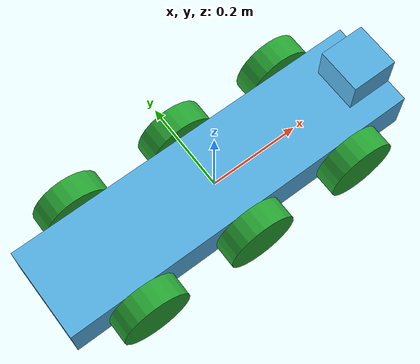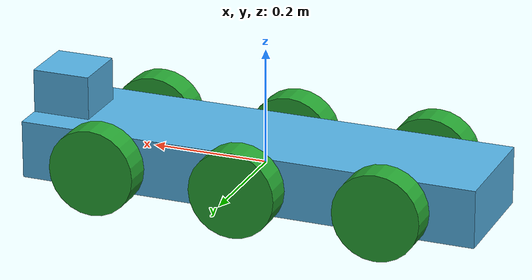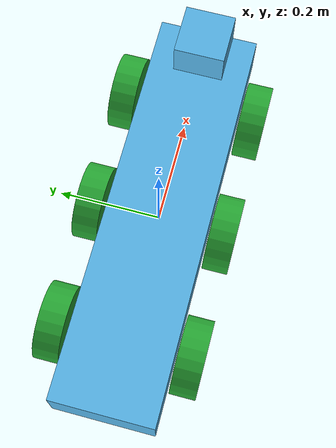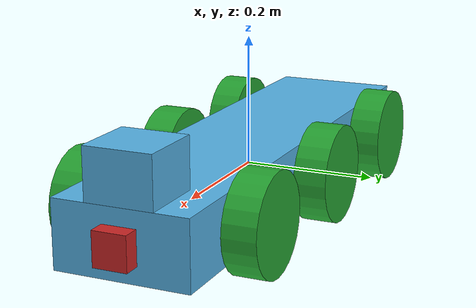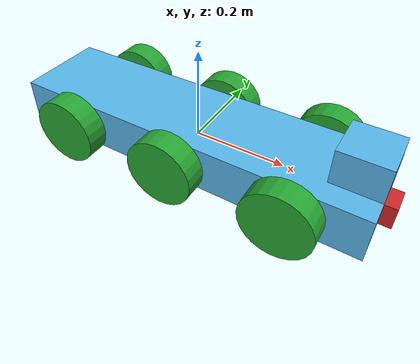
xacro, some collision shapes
<?xml version="1.0" ?>

<robot name="six_wheeler" xmlns:xacro="http://www.ros.org/wiki/xacro">

    <xacro:include filename="$(find my_robot)/urdf/six_wheeler.gazebo" />

    <link name="robot_footprint"></link>

    <joint name="robot_footprint_joint" type="fixed">
        <origin xyz="0 0 0" rpy="0 0 0" />
        <parent link="robot_footprint" />
        <child link="chassis" />
    </joint>

    <link name="chassis">
        <pose>0 0 0.1 0 0 0</pose>

        <inertial>
            <mass value="25.0" />
            <origin xyz="0.0 0 0" rpy=" 0 0 0" />
            <inertia ixx="0.1" ixy="0" ixz="0" iyy="0.1" iyz="0" izz="0.1" />
        </inertial>

        <collision name="chassis_collision">
            <origin xyz="0 0 0" rpy=" 0 0 0" />
            <geometry>
                <box size=".8 .2 .1" />
            </geometry>
        </collision>

        <visual name="chassis_visual">
            <origin xyz="0 0 0" rpy=" 0 0 0" />
            <geometry>
                <box size=".8 .2 .1" />
            </geometry>
        </visual>
    </link>

    <!-- #region left_wheel_1 -->
    <link name="left_wheel_1">
        <inertial>
            <mass value="5.0" />
            <origin xyz="0.0 0.0 0.0" rpy="0.0 1.5707 1.5707" />
            <inertia ixx="0.1" ixy="0" ixz="0" iyy="0.1" iyz="0" izz="0.1" />
        </inertial>

        <collision>
            <origin xyz="0.0 0.0 0.0" rpy="0.0 1.5707 1.5707" />
            <geometry>
                <cylinder radius="0.075" length="0.05" />
            </geometry>
        </collision>

        <visual>
            <origin xyz="0.0 0.0 0.0" rpy="0.0 1.5707 1.5707" />
            <geometry>
                <cylinder radius="0.075" length="0.05" />
            </geometry>
        </visual>
    </link>

    <joint type="continuous" name="left_wheel_1_hinge">
        <origin xyz="0.25 0.13 0" rpy="0 0 0" />
        <child link="left_wheel_1" />
        <parent link="chassis" />
        <axis xyz="0 1 0" rpy="0 0 0" />
        <limit effort="10000" velocity="1000" />
        <dynamics damping="1.0" friction="1.0" />
    </joint>

    <gazebo reference="left_wheel_1">
        <material>Gazebo/Green</material>
    </gazebo>
    <!-- #endregion left_wheel_1 -->

    <!-- #region left_wheel_2 -->
    <link name="left_wheel_2">
        <inertial>
            <mass value="5.0" />
            <origin xyz="0.0 0.0 0.0" rpy="0.0 1.5707 1.5707" />
            <inertia ixx="0.1" ixy="0" ixz="0" iyy="0.1" iyz="0" izz="0.1" />
        </inertial>

        <collision>
            <origin xyz="0.0 0.0 0.0" rpy="0.0 1.5707 1.5707" />
            <geometry>
                <cylinder radius="0.075" length="0.05" />
            </geometry>
        </collision>

        <visual>
            <origin xyz="0.0 0.0 0.0" rpy="0.0 1.5707 1.5707" />
            <geometry>
                <cylinder radius="0.075" length="0.05" />
            </geometry>
        </visual>
    </link>

    <joint type="continuous" name="left_wheel_2_hinge">
        <origin xyz="0 0.13 0" rpy="0 0 0" />
        <child link="left_wheel_2" />
        <parent link="chassis" />
        <axis xyz="0 1 0" rpy="0 0 0" />
        <limit effort="10000" velocity="1000" />
        <dynamics damping="1.0" friction="1.0" />
    </joint>

    <gazebo reference="left_wheel_2">
        <material>Gazebo/Green</material>
    </gazebo>
    <!-- #endregion left_wheel_2 -->

    <!-- #region left_wheel_3 -->
    <link name="left_wheel_3">
        <inertial>
            <mass value="5.0" />
            <origin xyz="0.0 0.0 0.0" rpy="0.0 1.5707 1.5707" />
            <inertia ixx="0.1" ixy="0" ixz="0" iyy="0.1" iyz="0" izz="0.1" />
        </inertial>

        <collision>
            <origin xyz="0.0 0.0 0.0" rpy="0.0 1.5707 1.5707" />
            <geometry>
                <cylinder radius="0.075" length="0.05" />
            </geometry>
        </collision>

        <visual>
            <origin xyz="0.0 0.0 0.0" rpy="0.0 1.5707 1.5707" />
            <geometry>
                <cylinder radius="0.075" length="0.05" />
            </geometry>
        </visual>
    </link>

    <joint type="continuous" name="left_wheel_3_hinge">
        <origin xyz="-0.25 0.13 0" rpy="0 0 0" />
        <child link="left_wheel_3" />
        <parent link="chassis" />
        <axis xyz="0 1 0" rpy="0 0 0" />
        <limit effort="10000" velocity="1000" />
        <dynamics damping="1.0" friction="1.0" />
    </joint>

    <gazebo reference="left_wheel_3">
        <material>Gazebo/Green</material>
    </gazebo>
    <!-- #endregion left_wheel_3 -->

    <!-- #region right_wheel_1 -->
    <link name="right_wheel_1">
        <inertial>
            <mass value="5.0" />
            <origin xyz="0.0 0.0 0.0" rpy="0.0 1.5707 1.5707" />
            <inertia ixx="0.1" ixy="0" ixz="0" iyy="0.1" iyz="0" izz="0.1" />
        </inertial>

        <collision>
            <origin xyz="0.0 0.0 0.0" rpy="0.0 1.5707 1.5707" />
            <geometry>
                <cylinder radius="0.075" length="0.05" />
            </geometry>
        </collision>

        <visual>
            <origin xyz="0.0 0.0 0.0" rpy="0.0 1.5707 1.5707" />
            <geometry>
                <cylinder radius="0.075" length="0.05" />
            </geometry>
        </visual>
    </link>

    <joint type="continuous" name="right_wheel_1_hinge">
        <origin xyz="0.25 -0.13 0" rpy="0 0 0" />
        <child link="right_wheel_1" />
        <parent link="chassis" />
        <axis xyz="0 1 0" rpy="0 0 0" />
        <limit effort="10000" velocity="1000" />
        <dynamics damping="1.0" friction="1.0" />
    </joint>

    <gazebo reference="right_wheel_1">
        <material>Gazebo/Green</material>
    </gazebo>
    <!-- #endregion right_wheel_1 -->

    <!-- #region right_wheel_2 -->
    <link name="right_wheel_2">
        <inertial>
            <mass value="5.0" />
            <origin xyz="0.0 0.0 0.0" rpy="0.0 1.5707 1.5707" />
            <inertia ixx="0.1" ixy="0" ixz="0" iyy="0.1" iyz="0" izz="0.1" />
        </inertial>

        <collision>
            <origin xyz="0.0 0.0 0.0" rpy="0.0 1.5707 1.5707" />
            <geometry>
                <cylinder radius="0.075" length="0.05" />
            </geometry>
        </collision>

        <visual>
            <origin xyz="0.0 0.0 0.0" rpy="0.0 1.5707 1.5707" />
            <geometry>
                <cylinder radius="0.075" length="0.05" />
            </geometry>
        </visual>
    </link>

    <joint type="continuous" name="right_wheel_2_hinge">
        <origin xyz="0 -0.13 0" rpy="0 0 0" />
        <child link="right_wheel_2" />
        <parent link="chassis" />
        <axis xyz="0 1 0" rpy="0 0 0" />
        <limit effort="10000" velocity="1000" />
        <dynamics damping="1.0" friction="1.0" />
    </joint>

    <gazebo reference="right_wheel_2">
        <material>Gazebo/Green</material>
    </gazebo>
    <!-- #endregion right_wheel_2 -->

    <!-- #region right_wheel_3 -->
    <link name="right_wheel_3">
        <inertial>
            <mass value="5.0" />
            <origin xyz="0.0 0.0 0.0" rpy="0.0 1.5707 1.5707" />
            <inertia ixx="0.1" ixy="0" ixz="0" iyy="0.1" iyz="0" izz="0.1" />
        </inertial>

        <collision>
            <origin xyz="0.0 0.0 0.0" rpy="0.0 1.5707 1.5707" />
            <geometry>
                <cylinder radius="0.075" length="0.05" />
            </geometry>
        </collision>

        <visual>
            <origin xyz="0.0 0.0 0.0" rpy="0.0 1.5707 1.5707" />
            <geometry>
                <cylinder radius="0.075" length="0.05" />
            </geometry>
        </visual>
    </link>

    <joint type="continuous" name="right_wheel_3_hinge">
        <origin xyz="-0.25 -0.13 0" rpy="0 0 0" />
        <child link="right_wheel_3" />
        <parent link="chassis" />
        <axis xyz="0 1 0" rpy="0 0 0" />
        <limit effort="10000" velocity="1000" />
        <dynamics damping="1.0" friction="1.0" />
    </joint>

    <gazebo reference="right_wheel_3">
        <material>Gazebo/Green</material>
    </gazebo>
    <!-- #endregion right_wheel_3 -->

    <!-- #region camera -->
    <link name="camera">
        <inertial>
            <mass value="0.1" />
            <origin xyz="0 0 0" rpy="0 0 0" />
            <inertia ixx="1e-6" ixy="0" ixz="0" iyy="1e-6" iyz="0" izz="1e-6" />
            <box_inertia m="0.1" x="0.05" y="0.05" z="0.05" />
        </inertial>

        <collision>
            <origin xyz="0 0 0" rpy="0 0 0" />
            <geometry>
                <box size="0.05 0.05 0.05" />
            </geometry>
        </collision>

        <visual>
            <origin xyz="0 0 0" rpy="0 0 0" />
            <geometry>
                <box size="0.05 0.05 0.05" />
            </geometry>
        </visual>
    </link>

    <joint type="fixed" name="camera_joint">
        <origin xyz="0.4 0 0" rpy="0 0 0" />
        <child link="camera" />
        <parent link="chassis" />
        <axis xyz="0 1 0" rpy="0 0 0" />
    </joint>

    <gazebo reference="camera">
        <material>Gazebo/Red</material>
    </gazebo>
    <!-- #endregion camera -->

    <link name="hokuyo">
        <intertial>
            <mass value="1e-5" />
            <origin xyz="0 0 0" rpy="0 0 0" />
            <inertia ixx="1e-6" ixy="0" ixz="0" iyy="1e-6" iyz="0" izz="1e-6" />
        </intertial>

        <collision>
            <origin xyz="0 0 0" rpy="0 0 0" />
            <geometry>
                <box size="0.1 0.1 0.1" />
            </geometry>
        </collision>

        <visual>
            <origin xyz="0 0 0" rpy="0 0 0" />
            <geometry>
                <mesh filename="package://my_robot/meshes/hokuyo.dae" />
            </geometry>
        </visual>
    </link>

    <joint type="fixed" name="hokuyo_joint">
        <origin xyz="0.35 0 0.075" rpy="0 0 0" />
        <child link="hokuyo" />
        <parent link="chassis" />
        <axis xyz="0 1 0" rpy="0 0 0" />
    </joint>

</robot>
